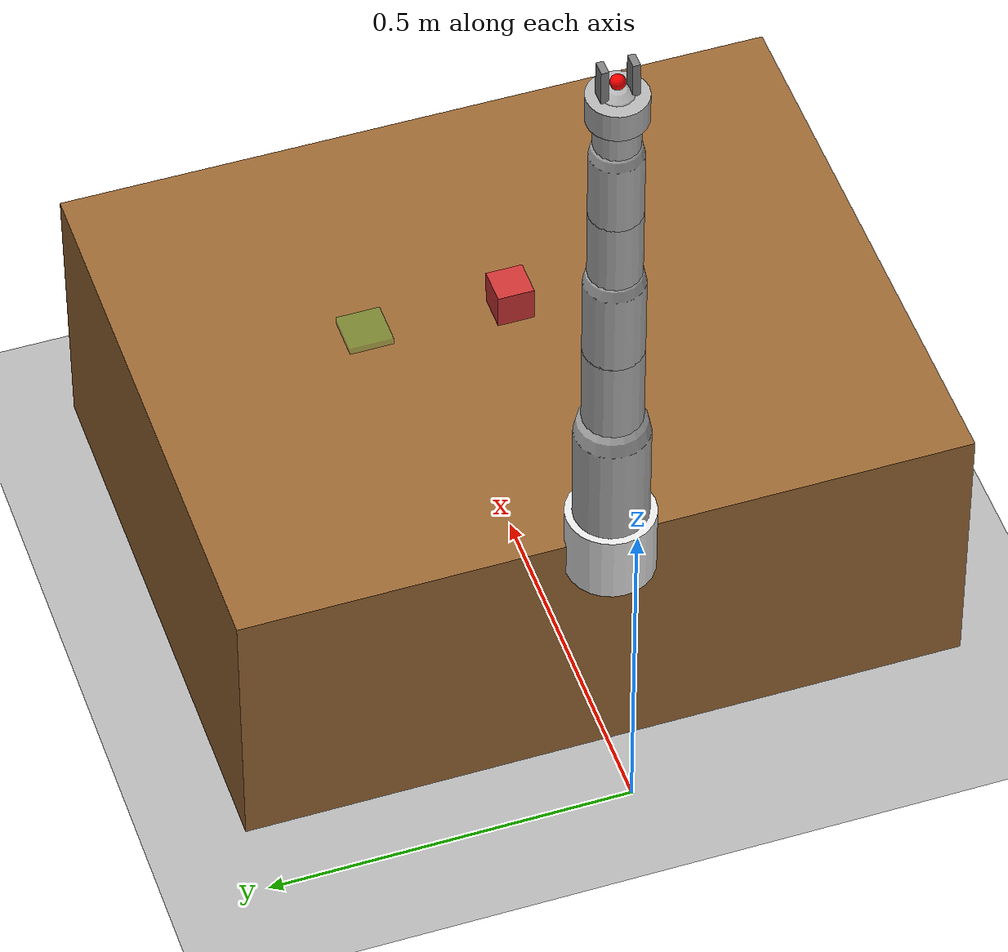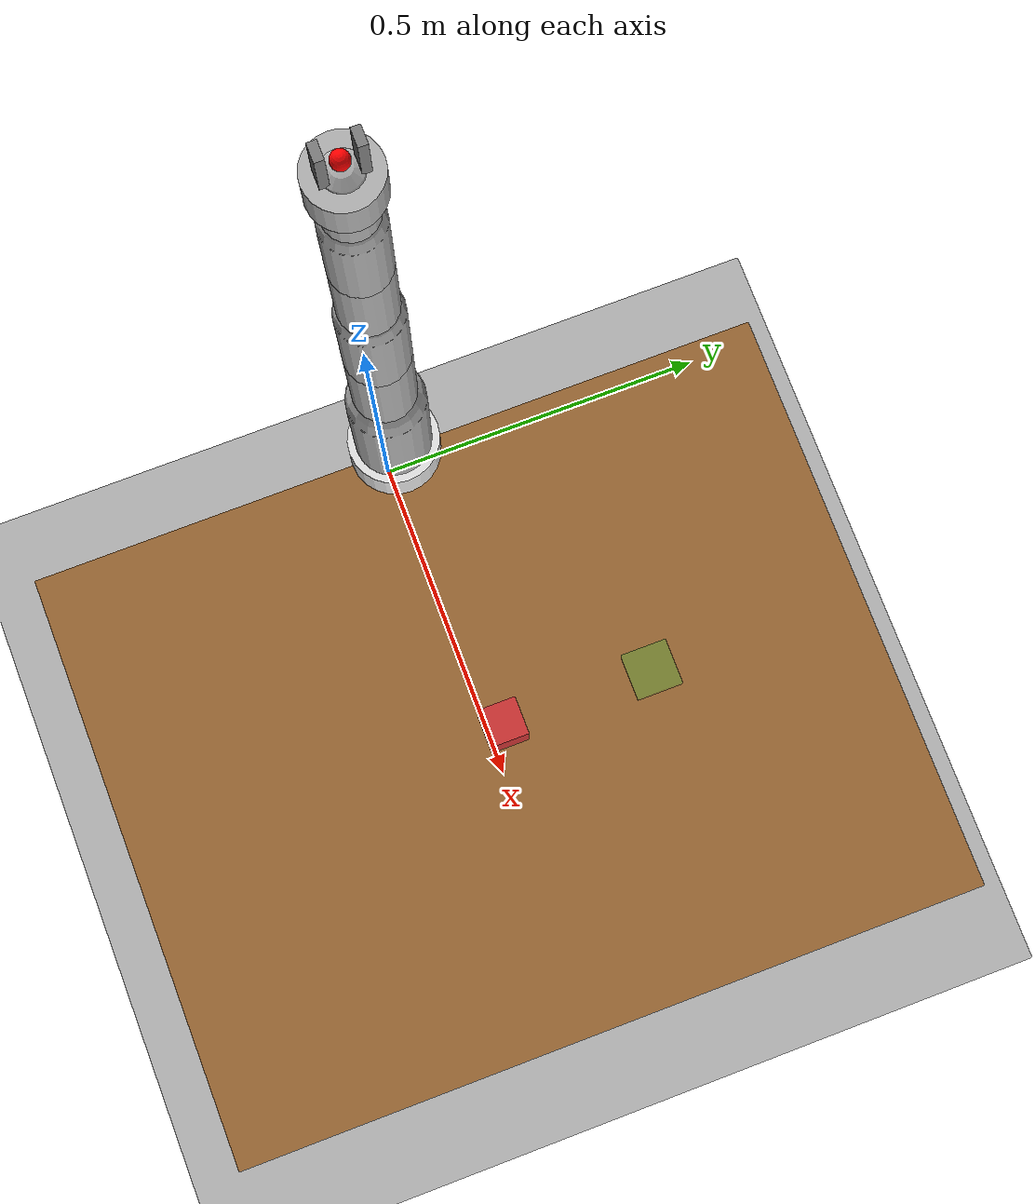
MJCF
<mujoco model="panda_pick_place">
  <compiler angle="radian" meshdir="." autolimits="true"/>
  <option timestep="0.002" gravity="0 0 -9.81" integrator="implicitfast"/>

  <default>
    <default class="panda">
      <joint damping="1.0" armature="0.1"/>
      <geom condim="4" friction="1 0.5 0.01" margin="0.001"/>
      <position kp="100" kv="20"/>
    </default>
  </default>

  <asset>
    <texture type="2d" name="grid" builtin="checker" rgb1="0.8 0.8 0.8" rgb2="0.6 0.6 0.6"
             width="512" height="512"/>
    <material name="grid_mat" texture="grid" texrepeat="4 4" reflectance="0.1"/>
    <material name="robot_mat" rgba="0.7 0.7 0.7 1"/>
    <material name="object_mat" rgba="0.8 0.2 0.2 1"/>
    <material name="target_mat" rgba="0.2 0.8 0.2 0.3"/>
  </asset>

  <worldbody>
    <geom name="floor" type="plane" size="2 2 0.01" material="grid_mat"/>

    <body name="table" pos="0.5 0 0.2">
      <geom type="box" size="0.4 0.5 0.2" rgba="0.6 0.4 0.2 1" mass="100"/>
    </body>

    <!-- Panda Arm (same as reach) -->
    <body name="link0" pos="0.1 0 0.4" childclass="panda">
      <geom type="cylinder" size="0.06 0.05" rgba="0.9 0.9 0.9 1" mass="2"/>
      <body name="link1" pos="0 0 0.05">
        <joint name="j1" type="hinge" axis="0 0 1" range="-2.9 2.9"/>
        <geom type="capsule" fromto="0 0 0 0 0 0.15" size="0.05" material="robot_mat" mass="2"/>
        <body name="link2" pos="0 0 0.15">
          <joint name="j2" type="hinge" axis="0 1 0" range="-1.76 1.76"/>
          <geom type="capsule" fromto="0 0 0 0 0 0.15" size="0.04" material="robot_mat" mass="2"/>
          <body name="link3" pos="0 0 0.15">
            <joint name="j3" type="hinge" axis="0 0 1" range="-2.9 2.9"/>
            <geom type="capsule" fromto="0 0 0 0 0 0.12" size="0.04" material="robot_mat" mass="1.5"/>
            <body name="link4" pos="0 0 0.12">
              <joint name="j4" type="hinge" axis="0 -1 0" range="-3.07 0.07"/>
              <geom type="capsule" fromto="0 0 0 0 0 0.12" size="0.035" material="robot_mat" mass="1.5"/>
              <body name="link5" pos="0 0 0.12">
                <joint name="j5" type="hinge" axis="0 0 1" range="-2.9 2.9"/>
                <geom type="capsule" fromto="0 0 0 0 0 0.1" size="0.035" material="robot_mat" mass="1"/>
                <body name="link6" pos="0 0 0.1">
                  <joint name="j6" type="hinge" axis="0 1 0" range="-0.02 3.75"/>
                  <geom type="capsule" fromto="0 0 0 0 0 0.08" size="0.03" material="robot_mat" mass="1"/>
                  <body name="link7" pos="0 0 0.08">
                    <joint name="j7" type="hinge" axis="0 0 1" range="-2.9 2.9"/>
                    <geom type="cylinder" size="0.04 0.02" material="robot_mat" mass="0.5"/>
                    <site name="ee_site" pos="0 0 0.04" size="0.01" rgba="1 0 0 1"/>
                    <body name="left_finger" pos="0 0.02 0.04">
                      <joint name="finger_left" type="slide" axis="0 1 0" range="0 0.04"/>
                      <geom type="box" size="0.01 0.005 0.03" rgba="0.5 0.5 0.5 1" mass="0.1"
                            friction="2 0.5 0.01"/>
                    </body>
                    <body name="right_finger" pos="0 -0.02 0.04">
                      <joint name="finger_right" type="slide" axis="0 -1 0" range="0 0.04"/>
                      <geom type="box" size="0.01 0.005 0.03" rgba="0.5 0.5 0.5 1" mass="0.1"
                            friction="2 0.5 0.01"/>
                    </body>
                  </body>
                </body>
              </body>
            </body>
          </body>
        </body>
      </body>
    </body>

    <!-- Manipulable object -->
    <body name="object" pos="0.5 0 0.45">
      <freejoint name="object_joint"/>
      <geom type="box" size="0.025 0.025 0.025" material="object_mat" mass="0.1"
            friction="1.5 0.5 0.01" condim="4"/>
    </body>

    <!-- Placement target (visual only) -->
    <body name="place_target" pos="0.5 0.2 0.45">
      <geom type="box" size="0.03 0.03 0.005" material="target_mat" contype="0" conaffinity="0"/>
    </body>

    <light name="top_light" pos="0.5 0 1.5" dir="0 0 -1" diffuse="0.8 0.8 0.8" castshadow="true"/>
    <light name="side_light" pos="0 1 1" dir="0 -0.5 -0.5" diffuse="0.5 0.5 0.5"/>

    <camera name="wrist_cam" pos="0.8 0 0.8" xyaxes="0 1 0 -0.5 0 0.5" fovy="60"/>
    <camera name="front_cam" pos="1.5 0 0.8" xyaxes="0 1 0 -0.5 0 0.8" fovy="60"/>
  </worldbody>

  <actuator>
    <position class="panda" name="act_j1" joint="j1"/>
    <position class="panda" name="act_j2" joint="j2"/>
    <position class="panda" name="act_j3" joint="j3"/>
    <position class="panda" name="act_j4" joint="j4"/>
    <position class="panda" name="act_j5" joint="j5"/>
    <position class="panda" name="act_j6" joint="j6"/>
    <position class="panda" name="act_j7" joint="j7"/>
    <position name="act_finger_left" joint="finger_left" kp="50"/>
    <position name="act_finger_right" joint="finger_right" kp="50"/>
  </actuator>
</mujoco>
